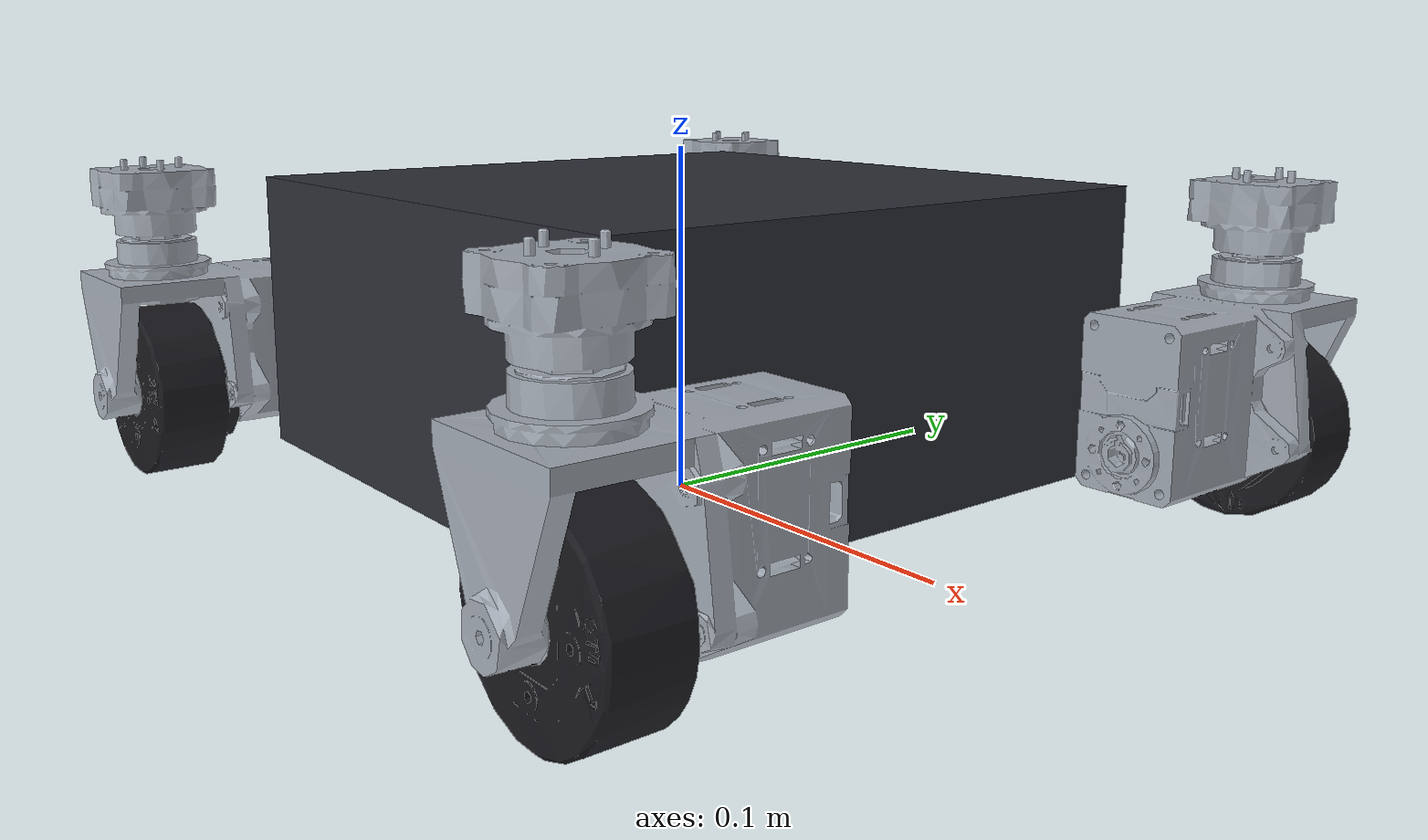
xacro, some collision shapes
<?xml version="1.0"?>
<robot xmlns:xacro="http://ros.org/wiki/xacro" name="wcr">

    <!-- common includes -->
    <xacro:include filename="wcr_common_properties.xacro"/>
    <xacro:include filename="wcr_params.xacro"/>
    <xacro:include filename="wcr_base.xacro"/>

    <!-- Gazebo sim block selection -->
    <xacro:if value="$(arg sim)">
        <xacro:include filename="wcr.gazebo"/>
    </xacro:if>

    <!-- choose variant-specific ros2_control parts -->
    <xacro:if value="${'$(arg variant)' == 'classic'}">
        <xacro:include filename="wcr_classic.ros2_control.xacro"/>
    </xacro:if>

    <xacro:if value="${'$(arg variant)' == 'effort'}">
        <xacro:include filename="wcr_effort.ros2_control.xacro"/>
    </xacro:if>

    <xacro:if value="${'$(arg variant)' == 'velocity'}">
        <xacro:include filename="wcr_velocity.ros2_control.xacro"/>
    </xacro:if>

    <xacro:if value="${'$(arg variant)' == 'mimic'}">
        <xacro:include filename="wcr_mimic.ros2_control.xacro"/>
    </xacro:if>

    <xacro:if value="${'$(arg variant)' == 'mix'}">
        <xacro:include filename="wcr_mix.ros2_control.xacro"/>
    </xacro:if>

    <xacro:if value="${'$(arg variant)' == 'mock'}">
        <xacro:include filename="mock_wcr_classic.ros2_control.xacro"/>
    </xacro:if>

</robot>

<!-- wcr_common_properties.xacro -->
<robot xmlns:xacro="http://www.ros.org/wiki/xacro">

    <!-- Realistic Industrial / Military Aerospace Palette -->
    <material name="gray">
        <!-- Stealth Matte Carbon Chassis -->
        <color rgba="0.18 0.19 0.22 1.0"/>
    </material>

    <material name="red">
        <!-- Titanium / Gunmetal Steering Knuckles -->
        <color rgba="0.65 0.68 0.72 1.0"/>
    </material>

    <material name="green">
        <!-- Heavy-Duty Dark Rubber Tires -->
        <color rgba="0.10 0.10 0.12 1.0"/>
    </material>

    <material name="yellow">
        <!-- Industrial Hazard Accent -->
        <color rgba="0.95 0.75 0.05 1.0"/>
    </material>

    <material name="blue">
        <!-- High-Velocity EDF Turbine Core (Aerospace Cyan/Blue) -->
        <color rgba="0.05 0.55 0.88 1.0"/>
    </material>

    <material name="turquoise">
        <!-- Precision Aero Propellers -->
        <color rgba="0.08 0.65 0.90 1.0"/>
    </material>

</robot>

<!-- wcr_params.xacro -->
<robot xmlns:xacro="http://ros.org/wiki/xacro">

    <xacro:arg name="namespace" default="wcr_robot"/>
    <xacro:arg name="variant" default="mock"/>         <!-- classic / effort / velocity / mimic / mix / mock-->
    <xacro:arg name="sim" default="true"/>
    <xacro:arg name="propeller_control" default="true"/>
    <xacro:property name="namespace" value="$(arg namespace)" />
    <xacro:property name="variant" value="$(arg variant)" />
    <xacro:property name="sim" value="$(arg sim)" />
    <xacro:property name="propeller_control" value="$(arg propeller_control)" />

    <!-- ARGUMENTS -->

    <!-- Configuration -->
    <xacro:arg name="side_propellers" default="false"/>   <!-- original 4 side props; the dam robot is EDF only -->
    <xacro:arg name="chassis_mesh" default="chassis_body.obj"/>  <!-- or chassis_body_arms.obj -->

    <!-- Geometry -->
    <xacro:arg name="length" default="0.225"/>
    <xacro:arg name="width" default="0.225"/>
    <xacro:arg name="chassis_mass" default="1.45"/>
    <xacro:arg name="chassis_inertia" default="0.003"/>
    <xacro:arg name="chassis_com_x" default="-0.0093"/>
    <xacro:arg name="chassis_com_y" default="0.0"/>
    <xacro:arg name="chassis_com_z" default="0.0729"/>
    <xacro:arg name="chassis_ixx" default="0.00817"/>
    <xacro:arg name="chassis_iyy" default="0.0141"/>
    <xacro:arg name="chassis_izz" default="0.01988"/>

    <!-- Sensor Mount Poses -->
    <xacro:arg name="imu_x" default="0.06551"/>
    <xacro:arg name="imu_y" default="0.0"/>
    <xacro:arg name="imu_z" default="0.098"/>
    <xacro:arg name="imu_roll" default="0.0"/>
    <xacro:arg name="imu_pitch" default="0.0"/>
    <xacro:arg name="imu_yaw" default="0.0"/>

    <xacro:arg name="camera_x" default="0.14885"/>
    <xacro:arg name="camera_y" default="0.00922"/>
    <xacro:arg name="camera_z" default="0.06659"/>
    <xacro:arg name="camera_roll" default="0.0"/>
    <xacro:arg name="camera_pitch" default="0.0"/>
    <xacro:arg name="camera_yaw" default="0.0"/>

    <xacro:arg name="optical_flow_x" default="0.06"/>
    <xacro:arg name="optical_flow_y" default="0.0"/>
    <xacro:arg name="optical_flow_z" default="0.095"/>
    <xacro:arg name="optical_flow_roll" default="0.0"/>
    <xacro:arg name="optical_flow_pitch" default="-1.57079632679"/>
    <xacro:arg name="optical_flow_yaw" default="0.0"/>

    <xacro:arg name="barometer_x" default="0.06"/>
    <xacro:arg name="barometer_y" default="0.0"/>
    <xacro:arg name="barometer_z" default="0.1"/>
    <xacro:arg name="barometer_roll" default="0.0"/>
    <xacro:arg name="barometer_pitch" default="0.0"/>
    <xacro:arg name="barometer_yaw" default="0.0"/>

    <xacro:arg name="distance_sensor_x" default="0.16"/>
    <xacro:arg name="distance_sensor_y" default="0.0"/>
    <xacro:arg name="distance_sensor_z" default="0.05"/>
    <xacro:arg name="distance_sensor_roll" default="0.0"/>
    <xacro:arg name="distance_sensor_pitch" default="1.57079632679"/>
    <xacro:arg name="distance_sensor_yaw" default="0.0"/>

    <!-- Sensor Rates -->
    <xacro:arg name="imu_rate_hz" default="100.0"/>
    <xacro:arg name="camera_rate_hz" default="30.0"/>
    <xacro:arg name="optical_flow_rate_hz" default="50.0"/>
    <xacro:arg name="barometer_rate_hz" default="25.0"/>
    <xacro:arg name="distance_rate_hz" default="20.0"/>

    <!-- Sensor Noise -->
    <xacro:arg name="imu_gyro_stddev" default="0.001"/>
    <xacro:arg name="imu_accel_stddev" default="0.01"/>
    <xacro:arg name="camera_noise_stddev" default="0.0005"/>
    <xacro:arg name="optical_flow_noise_stddev" default="0.0005"/>
    <xacro:arg name="barometer_noise_stddev" default="10.0"/>
    <xacro:arg name="distance_noise_stddev" default="0.0005"/>

    <!-- Camera / Optical Flow -->
    <xacro:arg name="camera_width" default="800"/>
    <xacro:arg name="camera_height" default="800"/>
    <xacro:arg name="camera_hfov" default="1.3962634"/>
    <xacro:arg name="optical_flow_width" default="320"/>
    <xacro:arg name="optical_flow_height" default="240"/>
    <xacro:arg name="optical_flow_hfov" default="1.3962634"/>

    <!-- Distance Sensor -->
    <xacro:arg name="distance_min_m" default="0.05"/>
    <xacro:arg name="distance_max_m" default="5.0"/>
    <xacro:arg name="distance_resolution_m" default="0.01"/>

    <!-- Barometer -->
    <xacro:arg name="barometer_reference_altitude" default="0.0"/>

    <!-- Thruster / Environment -->
    <xacro:arg name="air_density" default="1.225"/>
    <xacro:arg name="thruster_coefficient" default="0.1"/>
    <xacro:arg name="propeller_diameter_main" default="0.2286"/>
    <xacro:arg name="propeller_diameter_edf" default="0.11"/>

    <!-- Steering -->
    <xacro:arg name="steering_height" default="0.05029"/>
    <xacro:arg name="steering_mass" default="0.1"/>
    <xacro:arg name="steering_effort" default="5.0"/>
    <xacro:arg name="steering_velocity" default="5.23598775"/>
    <xacro:arg name="steering_i_xx" default="0.0001"/>
    <xacro:arg name="steering_i_xy" default="0.0001"/>
    <xacro:arg name="steering_i" default="0.00006"/>

    <!-- Wheel -->
    <xacro:arg name="wheel_height" default="-0.035250"/>
    <xacro:arg name="wheel_mass" default="0.035"/>
    <xacro:arg name="wheel_radius" default="0.0254"/>
    <xacro:arg name="wheel_width" default="0.020"/>
    <xacro:arg name="wheel_i_axial" default="0.0001"/>   <!-- includes reflected gearbox inertia -->
    <xacro:arg name="wheel_i_radial" default="0.00006"/>
    <xacro:arg name="wheel_effort" default="100.0"/>
    <xacro:arg name="wheel_velocity" default="5.23598775"/>
    <xacro:arg name="wheel_i_xx" default="0.0002"/>
    <xacro:arg name="wheel_i_xy" default="0.0001"/>

    <!-- Propeller -->
    <xacro:arg name="prop_x" default="0.03561"/>
    <xacro:arg name="prop_y" default="0.18981"/>
    <xacro:arg name="prop_height" default="0.09991"/>
    <xacro:arg name="prop_mass" default="0.015"/>
    <xacro:arg name="prop_effort" default="1.0"/>
    <xacro:arg name="prop_velocity" default="1000.0"/>
    <xacro:arg name="prop_limit_upper" default="-1e16"/>
    <xacro:arg name="prop_limit_lower" default="1e16"/>
    <xacro:arg name="prop_i_xy" default="0.0001"/>
    <xacro:arg name="prop_i_z" default="0.0002"/>

    <!-- EDF System -->
    <xacro:arg name="edf_mass" default="0.02"/>
    <xacro:arg name="edf_i" default="0.00002"/>
    <xacro:arg name="edf_effort" default="100.0"/>
    <xacro:arg name="edf_velocity" default="1000.0"/>
    <xacro:arg name="edf_limit_upper" default="-1e16"/>
    <xacro:arg name="edf_limit_lower" default="1e16"/>
    <xacro:arg name="edf_i_xy" default="0.001"/>
    <xacro:arg name="edf_i_z" default="0.002"/>

    <!-- Testing -->
    <xacro:arg name="default_inertia" default="0.001"/>

    <!-- CONFIGURATION PARAMETERS -->

    <xacro:property name="side_propellers" value="$(arg side_propellers)"/>
    <xacro:property name="chassis_mesh" value="$(arg chassis_mesh)"/>

    <!-- GEOMETRY PARAMETERS -->

    <xacro:property name="length" value="$(arg length)" />
	<xacro:property name="width" value="$(arg width)" />
    <xacro:property name="chassis_mass" value="$(arg chassis_mass)"/>
    <xacro:property name="chassis_inertia" value="$(arg chassis_inertia)"/>
    <xacro:property name="chassis_com_x" value="$(arg chassis_com_x)"/>
    <xacro:property name="chassis_com_y" value="$(arg chassis_com_y)"/>
    <xacro:property name="chassis_com_z" value="$(arg chassis_com_z)"/>
    <xacro:property name="chassis_ixx" value="$(arg chassis_ixx)"/>
    <xacro:property name="chassis_iyy" value="$(arg chassis_iyy)"/>
    <xacro:property name="chassis_izz" value="$(arg chassis_izz)"/>

    <!-- SENSOR MOUNT POSE PARAMETERS -->
    <xacro:property name="imu_x" value="$(arg imu_x)"/>
    <xacro:property name="imu_y" value="$(arg imu_y)"/>
    <xacro:property name="imu_z" value="$(arg imu_z)"/>
    <xacro:property name="imu_roll" value="$(arg imu_roll)"/>
    <xacro:property name="imu_pitch" value="$(arg imu_pitch)"/>
    <xacro:property name="imu_yaw" value="$(arg imu_yaw)"/>

    <xacro:property name="camera_x" value="$(arg camera_x)"/>
    <xacro:property name="camera_y" value="$(arg camera_y)"/>
    <xacro:property name="camera_z" value="$(arg camera_z)"/>
    <xacro:property name="camera_roll" value="$(arg camera_roll)"/>
    <xacro:property name="camera_pitch" value="$(arg camera_pitch)"/>
    <xacro:property name="camera_yaw" value="$(arg camera_yaw)"/>

    <xacro:property name="optical_flow_x" value="$(arg optical_flow_x)"/>
    <xacro:property name="optical_flow_y" value="$(arg optical_flow_y)"/>
    <xacro:property name="optical_flow_z" value="$(arg optical_flow_z)"/>
    <xacro:property name="optical_flow_roll" value="$(arg optical_flow_roll)"/>
    <xacro:property name="optical_flow_pitch" value="$(arg optical_flow_pitch)"/>
    <xacro:property name="optical_flow_yaw" value="$(arg optical_flow_yaw)"/>

    <xacro:property name="barometer_x" value="$(arg barometer_x)"/>
    <xacro:property name="barometer_y" value="$(arg barometer_y)"/>
    <xacro:property name="barometer_z" value="$(arg barometer_z)"/>
    <xacro:property name="barometer_roll" value="$(arg barometer_roll)"/>
    <xacro:property name="barometer_pitch" value="$(arg barometer_pitch)"/>
    <xacro:property name="barometer_yaw" value="$(arg barometer_yaw)"/>

    <xacro:property name="distance_sensor_x" value="$(arg distance_sensor_x)"/>
    <xacro:property name="distance_sensor_y" value="$(arg distance_sensor_y)"/>
    <xacro:property name="distance_sensor_z" value="$(arg distance_sensor_z)"/>
    <xacro:property name="distance_sensor_roll" value="$(arg distance_sensor_roll)"/>
    <xacro:property name="distance_sensor_pitch" value="$(arg distance_sensor_pitch)"/>
    <xacro:property name="distance_sensor_yaw" value="$(arg distance_sensor_yaw)"/>

    <!-- SENSOR CONFIG PARAMETERS -->
    <xacro:property name="imu_rate_hz" value="$(arg imu_rate_hz)"/>
    <xacro:property name="camera_rate_hz" value="$(arg camera_rate_hz)"/>
    <xacro:property name="optical_flow_rate_hz" value="$(arg optical_flow_rate_hz)"/>
    <xacro:property name="barometer_rate_hz" value="$(arg barometer_rate_hz)"/>
    <xacro:property name="distance_rate_hz" value="$(arg distance_rate_hz)"/>

    <xacro:property name="imu_gyro_stddev" value="$(arg imu_gyro_stddev)"/>
    <xacro:property name="imu_accel_stddev" value="$(arg imu_accel_stddev)"/>
    <xacro:property name="camera_noise_stddev" value="$(arg camera_noise_stddev)"/>
    <xacro:property name="optical_flow_noise_stddev" value="$(arg optical_flow_noise_stddev)"/>
    <xacro:property name="barometer_noise_stddev" value="$(arg barometer_noise_stddev)"/>
    <xacro:property name="distance_noise_stddev" value="$(arg distance_noise_stddev)"/>

    <xacro:property name="camera_width" value="$(arg camera_width)"/>
    <xacro:property name="camera_height" value="$(arg camera_height)"/>
    <xacro:property name="camera_hfov" value="$(arg camera_hfov)"/>
    <xacro:property name="optical_flow_width" value="$(arg optical_flow_width)"/>
    <xacro:property name="optical_flow_height" value="$(arg optical_flow_height)"/>
    <xacro:property name="optical_flow_hfov" value="$(arg optical_flow_hfov)"/>

    <xacro:property name="distance_min_m" value="$(arg distance_min_m)"/>
    <xacro:property name="distance_max_m" value="$(arg distance_max_m)"/>
    <xacro:property name="distance_resolution_m" value="$(arg distance_resolution_m)"/>
    <xacro:property name="barometer_reference_altitude" value="$(arg barometer_reference_altitude)"/>

    <xacro:property name="air_density" value="$(arg air_density)"/>
    <xacro:property name="thruster_coefficient" value="$(arg thruster_coefficient)"/>
    <xacro:property name="propeller_diameter_main" value="$(arg propeller_diameter_main)"/>
    <xacro:property name="propeller_diameter_edf" value="$(arg propeller_diameter_edf)"/>

    <!-- STEERING PARAMETERS -->

	<xacro:property name="steering_height" value="$(arg steering_height)" />
    <xacro:property name="steering_mass" value="$(arg steering_mass)" />
    <xacro:property name="steering_effort" value="$(arg steering_effort)" />
    <xacro:property name="steering_velocity" value="$(arg steering_velocity)" />
    <xacro:property name="steering_i_xx" value="$(arg steering_i_xx)" />
    <xacro:property name="steering_i_xy" value="$(arg steering_i_xy)" />
    <xacro:property name="steering_i" value="$(arg steering_i)" />

    <!-- WHEEL PARAMETERS -->
	<xacro:property name="wheel_height" value="$(arg wheel_height)" />
    <xacro:property name="wheel_mass" value="$(arg wheel_mass)" />
    <xacro:property name="wheel_radius" value="$(arg wheel_radius)" />
    <xacro:property name="wheel_width" value="$(arg wheel_width)" />
    <xacro:property name="wheel_i_axial" value="$(arg wheel_i_axial)" />
    <xacro:property name="wheel_i_radial" value="$(arg wheel_i_radial)" />
    <xacro:property name="wheel_effort" value="$(arg wheel_effort)" />
    <xacro:property name="wheel_velocity" value="$(arg wheel_velocity)" />
    <xacro:property name="wheel_i_xx" value="$(arg wheel_i_xx)" />
    <xacro:property name="wheel_i_xy" value="$(arg wheel_i_xy)" />

    <!-- PROPELLER PARAMETERS -->

    <xacro:property name="prop_x" value="$(arg prop_x)" />
    <xacro:property name="prop_y" value="$(arg prop_y)" />
    <xacro:property name="prop_height" value="$(arg prop_height)" />
    <xacro:property name="prop_mass" value="$(arg prop_mass)" />
    <xacro:property name="edf_mass" value="$(arg edf_mass)" />
    <xacro:property name="edf_i" value="$(arg edf_i)" />

    <!-- TESTING PARAMETERS -->

    <xacro:property name="default_inertia" value="$(arg default_inertia)" />

</robot>

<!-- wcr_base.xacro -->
<robot xmlns:xacro="http://ros.org/wiki/xacro">

    <!-- xacro properties can be found in wcr_params.xacro -->
    <xacro:macro name="inertial_properties" params="mass ixx iyy izz">
        <inertial>
            <mass value="${mass}"/>
            <inertia ixx="${ixx}" ixy="0.0" ixz="0.0" iyy="${iyy}" iyz="0.0" izz="${izz}"/>
        </inertial>
    </xacro:macro>

    <!-- BASE LINK (on the wheel contact plane) -->

    <link name="base_link">
    </link>

    <!-- OPTITRACK LINK -->

    <joint name="optitrack_joint" type="fixed">
        <parent link="base_link"/>
        <child link="optitrack_link"/>
        <origin xyz="0 0 0.120"/> <!--140 mjerenjem, 120 iz optitrack-a-->
    </joint>

    <link name="optitrack_link">
    </link>

    <!-- IMU LINK -->

    <joint name="imu_joint" type="fixed">
        <parent link="chassis_link"/>
        <child link="imu_link"/>
        <origin xyz="${imu_x} ${imu_y} ${imu_z}" rpy="${imu_roll} ${imu_pitch} ${imu_yaw}"/>
    </joint>

    <link name="imu_link">
        <inertial>
            <origin xyz="0 0 0" rpy="0 0 0"/>
            <mass value="0.005"/>
            <inertia ixx="1e-7" ixy="0" ixz="0" iyy="1e-7" iyz="0" izz="1e-7"/>
        </inertial>
    </link>

    <!-- BAROMETER LINK -->

    <joint name="barometer_joint" type="fixed">
        <parent link="chassis_link"/>
        <child link="barometer_link"/>
        <origin xyz="${barometer_x} ${barometer_y} ${barometer_z}" rpy="${barometer_roll} ${barometer_pitch} ${barometer_yaw}"/>
    </joint>

    <link name="barometer_link">
    </link>

    <!-- T265 LINK -->

    <joint name="camera_joint" type="fixed">
        <parent link="chassis_link"/>
        <child link="t265_link"/>
        <origin xyz="${camera_x} ${camera_y} ${camera_z}" rpy="${camera_roll} ${camera_pitch} ${camera_yaw}"/>
    </joint>

    <link name="t265_link">
    </link>

    <!-- OPTICAL FLOW LINK -->

    <joint name="optical_flow_joint" type="fixed">
        <parent link="chassis_link"/>
        <child link="optical_flow_link"/>
        <origin xyz="${optical_flow_x} ${optical_flow_y} ${optical_flow_z}" rpy="${optical_flow_roll} ${optical_flow_pitch} ${optical_flow_yaw}"/>
    </joint>

    <link name="optical_flow_link">
    </link>

    <!-- T265 ODOM -->

    <joint name="camera_odom_joint" type="fixed">
        <parent link="chassis_link"/>
        <child link="t265_odom_frame"/>
        <origin xyz="${camera_x} ${camera_y} ${camera_z}" rpy="${camera_roll} ${camera_pitch} ${camera_yaw}"/>
    </joint>

    <link name="t265_odom_frame">
    </link>

    <!-- MARVELMIND LINK -->

    <joint name="marvelmind_joint" type="fixed">
        <parent link="chassis_link"/>
        <child link="marvelmind_link"/>
        <origin xyz="-0.1223 0.000 0.1205"/>
    </joint>

    <link name="marvelmind_link">
    </link>

    <!-- DISTANCE SENSOR LINK -->

    <joint name="distance_sensor_joint" type="fixed">
        <parent link="chassis_link"/>
        <child link="distance_sensor_link"/>
        <origin xyz="${distance_sensor_x} ${distance_sensor_y} ${distance_sensor_z}" rpy="${distance_sensor_roll} ${distance_sensor_pitch} ${distance_sensor_yaw}"/>
    </joint>

    <link name="distance_sensor_link">
    </link>

    <!-- CHASSIS LINK-->

    <joint name="chassis_joint" type="fixed">
        <parent link="base_link"/>
        <child link="chassis_link"/>
        <origin xyz="0 0 0.0103600017"/>
    </joint>

    <!-- Visual: full-detail CAD export, side propeller motors removed (tools/clean_chassis.py).
         Collision: boxes only; mesh collisions make wheel contact slow and jittery. -->
    <link name="chassis_link">
        <inertial>
            <origin xyz="${chassis_com_x} ${chassis_com_y} ${chassis_com_z}"/>
            <mass value="${chassis_mass}"/>
            <inertia ixx="${chassis_ixx}" ixy="0.0" ixz="0.0" iyy="${chassis_iyy}" iyz="0.0" izz="${chassis_izz}"/>
        </inertial>
        <visual>
            <origin rpy="0 0 0" xyz="0 0 0"/>
            <geometry>
                <mesh filename="package://wcr_description/meshes/${chassis_mesh}" scale="0.001 0.001 0.001"/>
            </geometry>
            <material name="gray"/>
        </visual>
        <!-- EDF skirt (bottom 9.6 mm above the contact plane) -->
        <collision name="skirt">
            <origin xyz="0 0 0.040" rpy="0 0 0"/>
            <geometry>
                <box size="0.174 0.175 0.080"/>
            </geometry>
        </collision>
        <!-- deck, servos and electronics -->
        <collision name="deck">
            <origin xyz="0.0085 0 0.095" rpy="0 0 0"/>
            <geometry>
                <box size="0.317 0.265 0.070"/>
            </geometry>
        </collision>
    </link>

    <!-- EDF ROTOR: axis points into the surface, so positive thrust presses the robot on.
         The Thruster command is the total adhesion force (fan thrust + skirt suction). -->

    <joint name="EDF_propeller_joint" type="continuous">
        <parent link="chassis_link"/>
        <child link="EDF_propeller_link"/>
        <axis xyz="0 0 -1"/>
        <origin xyz="0 0 0"/>
    </joint>

    <link name="EDF_propeller_link">
        <inertial>
            <origin xyz="0 0 0.040"/>
            <mass value="${edf_mass}"/>
            <inertia ixx="${edf_i}" ixy="0.0" ixz="0.0" iyy="${edf_i}" iyz="0.0" izz="${edf_i}"/>
        </inertial>
        <visual>
            <origin rpy="0 0 0" xyz="0 0 0"/>
            <geometry>
                <mesh filename="package://wcr_description/meshes/edfProp.stl" scale="0.001 0.001 0.001"/>
            </geometry>
            <material name="blue"/>
        </visual>
    </link>

    <!-- SIDE PROPELLERS (original design; removed from the dam robot) -->

    <xacro:if value="${side_propellers}">
    <joint name="FL_propeller_joint" type="continuous">
        <parent link="chassis_link"/>
        <child link="FL_propeller_link"/>
        <axis xyz="-1 0 0"/>
        <origin xyz="${prop_x} ${prop_y} ${prop_height}"/>
    </joint>

    <link name="FL_propeller_link">
        <xacro:inertial_properties mass="${prop_mass}" ixx="${default_inertia}" iyy="${default_inertia}" izz="${default_inertia}"/>
        <visual>
            <origin rpy="0 0 0" xyz="${prop_x} -${prop_y} -${prop_height}"/>
            <geometry>
                <mesh filename="package://wcr_description/meshes/prop9Inch.stl" scale="0.001 0.001 0.001"/>
            </geometry>
            <material name="turquoise"/>
        </visual>
    </link>

    <joint name="BL_propeller_joint" type="continuous">
        <parent link="chassis_link"/>
        <child link="BL_propeller_link"/>
        <axis xyz="1 0 0"/>
        <origin xyz="-${prop_x} ${prop_y} ${prop_height}"/>
    </joint>

    <link name="BL_propeller_link">
        <xacro:inertial_properties mass="${prop_mass}" ixx="${default_inertia}" iyy="${default_inertia}" izz="${default_inertia}"/>
        <visual>
            <origin rpy="0 0 0" xyz="${prop_x} -${prop_y} -${prop_height}"/>
            <geometry>
                <mesh filename="package://wcr_description/meshes/prop9Inch.stl" scale="0.001 0.001 0.001"/>
            </geometry>
            <material name="turquoise"/>
        </visual>
    </link>

    <joint name="FR_propeller_joint" type="continuous">
        <parent link="chassis_link"/>
        <child link="FR_propeller_link"/>
        <axis xyz="1 0 0"/>
        <origin xyz="${prop_x} -${prop_y} ${prop_height}"/>
    </joint>

    <link name="FR_propeller_link">
        <xacro:inertial_properties mass="${prop_mass}" ixx="${default_inertia}" iyy="${default_inertia}" izz="${default_inertia}"/>
        <visual>
            <origin rpy="0 0 ${pi}" xyz="-${prop_x} ${prop_y} -${prop_height}"/>
            <geometry>
                <mesh filename="package://wcr_description/meshes/prop9Inch.stl" scale="0.001 0.001 0.001"/>
            </geometry>
            <material name="turquoise"/>
        </visual>
    </link>

    <joint name="BR_propeller_joint" type="continuous">
        <parent link="chassis_link"/>
        <child link="BR_propeller_link"/>
        <axis xyz="-1 0 0"/>
        <origin xyz="-${prop_x} -${prop_y} ${prop_height}"/>
    </joint>

    <link name="BR_propeller_link">
        <xacro:inertial_properties mass="${prop_mass}" ixx="${default_inertia}" iyy="${default_inertia}" izz="${default_inertia}"/>
        <visual>
            <origin rpy="0 0 ${pi}" xyz="-${prop_x} ${prop_y} -${prop_height}"/>
            <geometry>
                <mesh filename="package://wcr_description/meshes/prop9Inch.stl" scale="0.001 0.001 0.001"/>
            </geometry>
            <material name="turquoise"/>
        </visual>
    </link>
    </xacro:if>

    <!-- WHEEL UNITS: steering pod (revolute, z) + driven wheel (continuous, y) -->

    <xacro:macro name="wheel_unit" params="prefix sx sy pod_yaw wheel_rpy">
        <joint name="${prefix}_steering" type="revolute">
            <limit effort="${steering_effort}" lower="${-pi/2}" upper="${pi/2}" velocity="${steering_velocity}"/>
            <parent link="chassis_link"/>
            <child link="${prefix}_steering_link"/>
            <origin xyz="${sx*length/2} ${sy*width/2} ${steering_height}"/>
            <axis xyz="0 0 1"/>
        </joint>

        <link name="${prefix}_steering_link">
            <xacro:inertial_properties mass="${steering_mass}" ixx="${steering_i}" iyy="${steering_i}" izz="${steering_i}"/>
            <visual>
                <origin rpy="0 0 ${pod_yaw}" xyz="0 0 0"/>
                <geometry>
                    <mesh filename="package://wcr_description/meshes/active_wheel.obj" scale="0.001 0.001 0.001"/>
                </geometry>
                <material name="red"/>
            </visual>
        </link>

        <joint name="${prefix}_wheel" type="continuous">
            <axis xyz="0 1 0"/>
            <limit effort="${wheel_effort}" velocity="${wheel_velocity}"/>
            <origin xyz="0 0 ${wheel_height}"/>
            <parent link="${prefix}_steering_link"/>
            <child link="${prefix}_wheel_link"/>
        </joint>

        <link name="${prefix}_wheel_link">
            <xacro:inertial_properties mass="${wheel_mass}" ixx="${wheel_i_radial}" iyy="${wheel_i_axial}" izz="${wheel_i_radial}"/>
            <visual>
                <origin rpy="${wheel_rpy}" xyz="0 0 0"/>
                <geometry>
                    <mesh filename="package://wcr_description/meshes/wheel.obj" scale="0.001 0.001 0.001"/>
                </geometry>
                <material name="green"/>
            </visual>
            <collision>
                <origin rpy="${pi/2} 0 0" xyz="0 0 0"/>
                <geometry>
                    <cylinder radius="${wheel_radius}" length="${wheel_width}"/>
                </geometry>
            </collision>
        </link>
    </xacro:macro>

    <xacro:wheel_unit prefix="FL" sx="1" sy="1" pod_yaw="${pi/2}" wheel_rpy="0 ${pi/2} 0"/>
    <xacro:wheel_unit prefix="BL" sx="-1" sy="1" pod_yaw="${pi/2}" wheel_rpy="0 ${pi/2} 0"/>
    <xacro:wheel_unit prefix="BR" sx="-1" sy="-1" pod_yaw="${-pi/2}" wheel_rpy="0 0 ${pi}"/>
    <xacro:wheel_unit prefix="FR" sx="1" sy="-1" pod_yaw="${-pi/2}" wheel_rpy="0 0 ${pi}"/>
</robot>
